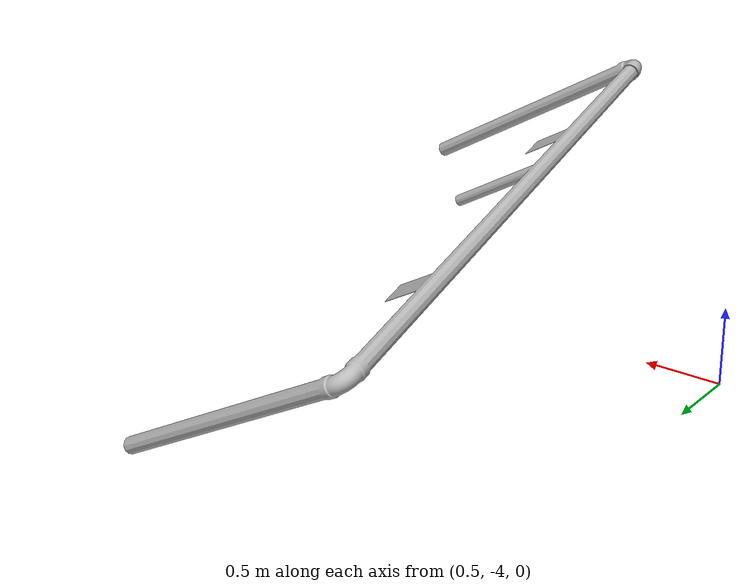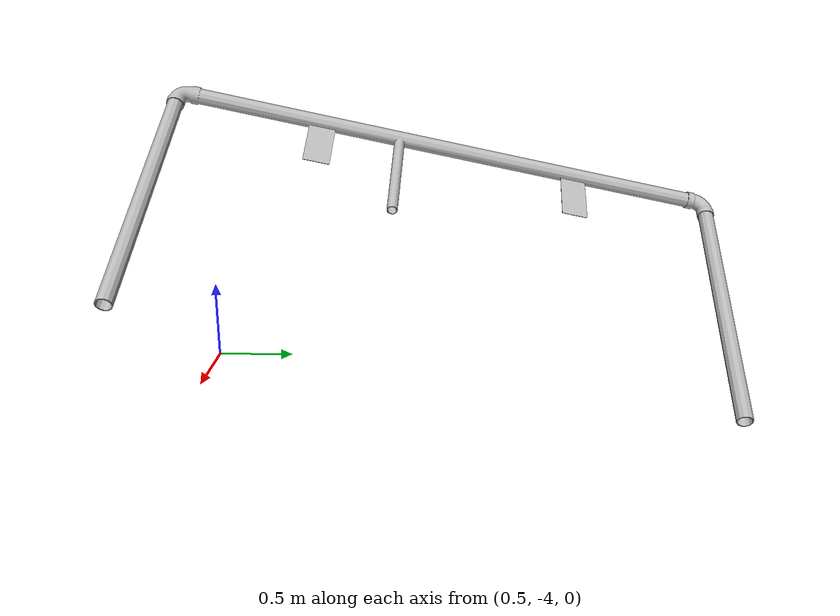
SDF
<?xml version="1.0"?>
<sdf version='1.6'>
  <model name='start_gate_2022'>
    <static>true</static>
    <link name='base_link'>
      <pose frame=''>0 0 0 0 -0 0</pose>
      <inertial>
        <pose frame=''>1.30078 1.35363 2.40887 0 -0 0</pose>
        <mass>13.5315</mass>
        <inertia>
          <ixx>5.04877</ixx>
          <ixy>0.364288</ixy>
          <ixz>-0.576968</ixz>
          <iyy>5.5194</iyy>
          <iyz>-1.05982</iyz>
          <izz>1.53641</izz>
        </inertia>
      </inertial>
      <collision name='base_link_collision'>
        <pose frame=''>0 0 0 0 -0 0</pose>
        <geometry>
          <mesh>
            <uri>file://start_gate_2022/start_gate.dae</uri>
          </mesh>
        </geometry>
      </collision>
      <visual name='base_link_visual'>
        <pose frame=''>0 0 0 0 -0 0</pose>
        <geometry>
          <mesh>
            <uri>file://start_gate_2022/start_gate.dae</uri>
          </mesh>
        </geometry>
      </visual>
    </link>
  </model>
</sdf>
